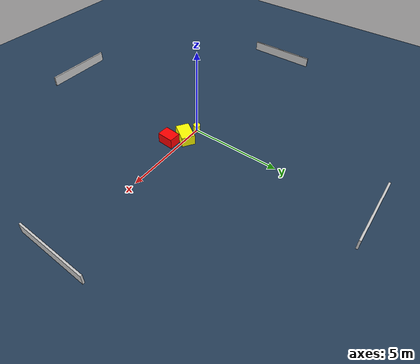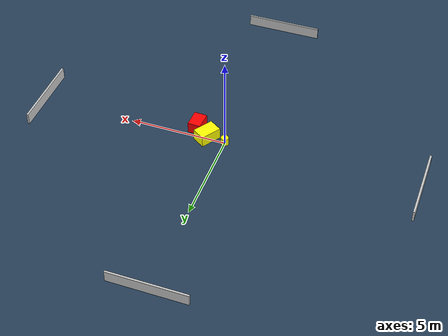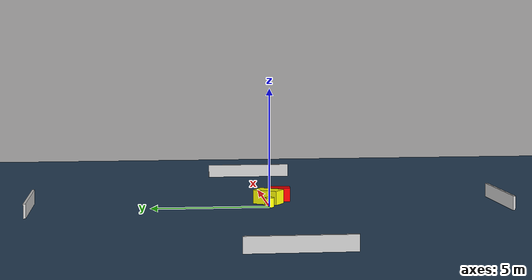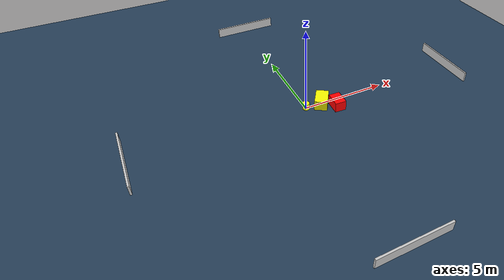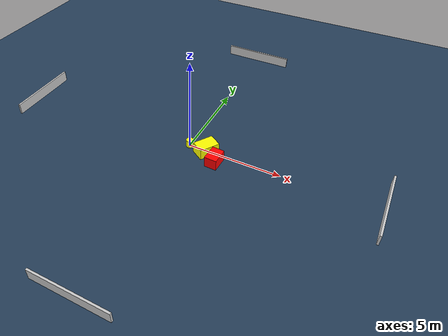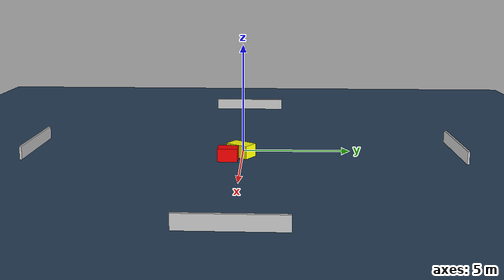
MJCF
<?xml version="1.0" ?>
<mujoco model="generated_environment">
  <option timestep="0.01" integrator="RK4" cone="elliptic"/>
  <default>
    <geom density="1"/>
  </default>
  <asset>
    <texture builtin="gradient" height="3072" name="skybox" rgb1="0.3 0.5 0.7" rgb2="0 0 0" type="skybox" width="512"/>
    <texture builtin="checker" height="300" name="groundplane" rgb1="0.2 0.3 0.4" rgb2="0.1 0.2 0.3" type="2d" width="300"/>
    <material name="groundplane" reflectance="0.2" texrepeat="5 5" texture="groundplane"/>
  </asset>
  <worldbody>
    <light dir="0 0 -1" directional="true" pos="0 0 1.5"/>
    <geom condim="3" friction="0.5 0.005 0.001" material="groundplane" name="floor" pos="0 0 0" size="0 0 0.05" type="plane"/>
    <body name="walls">
      <geom name="wall_1" condim="4" pos="-10.0 0.0 0.3" rgba="0.800000011920929 0.800000011920929 0.800000011920929 1.0" size="0.05 2.0 0.3" type="box"/>
      <geom name="wall_2" condim="4" pos="10.0 0.0 0.3" rgba="0.800000011920929 0.800000011920929 0.800000011920929 1.0" size="0.05 2.0 0.3" type="box"/>
      <geom name="wall_3" condim="4" pos="0.0 -10.0 0.3" rgba="0.800000011920929 0.800000011920929 0.800000011920929 1.0" size="2.0 0.05 0.3" type="box"/>
      <geom name="wall_4" condim="4" pos="0.0 10.0 0.3" rgba="0.800000011920929 0.800000011920929 0.800000011920929 1.0" size="2.0 0.05 0.3" type="box"/>
    </body>
    <body name="robot">
      <joint name="joint_x" type="slide" pos="0 0 0" axis="1 0 0"/>
      <joint name="joint_y" type="slide" pos="0 0 0" axis="0 1 0"/>
      <geom name="robot" type="cylinder" pos="0.0 0.0 0.2" size="0.2 0.2 0.0" mass="5.0" friction="1.0 0.005 0.0001" condim="4" rgba="1.0 1.0 0.0 1.0"/>
    </body>
    <body name="obstacle_1_movable">
      <geom name="obstacle_1_movable" condim="4" pos="0.9767160388339163 -0.06100699161934462 0.3" euler="0 0 146.93803888802748" friction="0.0 0.005 0.001" rgba="1.0 1.0 0.0 1.0" size="0.3696794841153077 0.55572836505094 0.3" type="box" mass="0.1"/>
      <joint type="free"/>
    </body>
    <body name="obstacle_2_static">
      <geom name="obstacle_2_static" condim="4" pos="1.6984585083735793 -0.6164540147664652 0.3" euler="0 0 267.1375206276322" friction="0.0 0.005 0.001" rgba="1.0 0.0 0.0 1.0" size="0.45579395949720425 0.33000875437241084 0.3" type="box"/>
    </body>
  </worldbody>
  <actuator>
    <motor name="actuator_x" joint="joint_x" gear="1" ctrlrange="-1 1"/>
    <motor name="actuator_y" joint="joint_y" gear="1" ctrlrange="-1 1"/>
  </actuator>
</mujoco>
